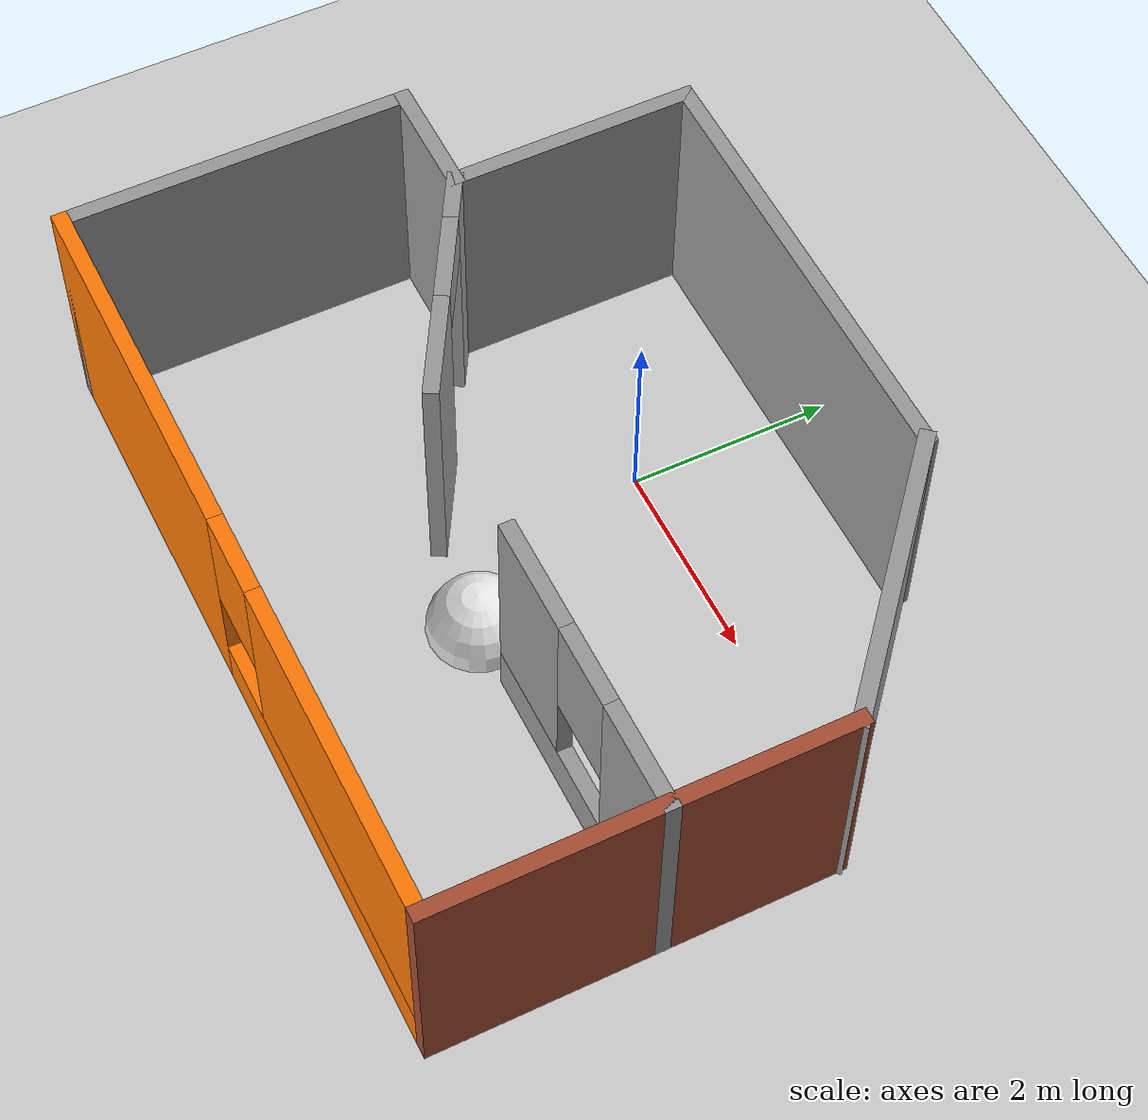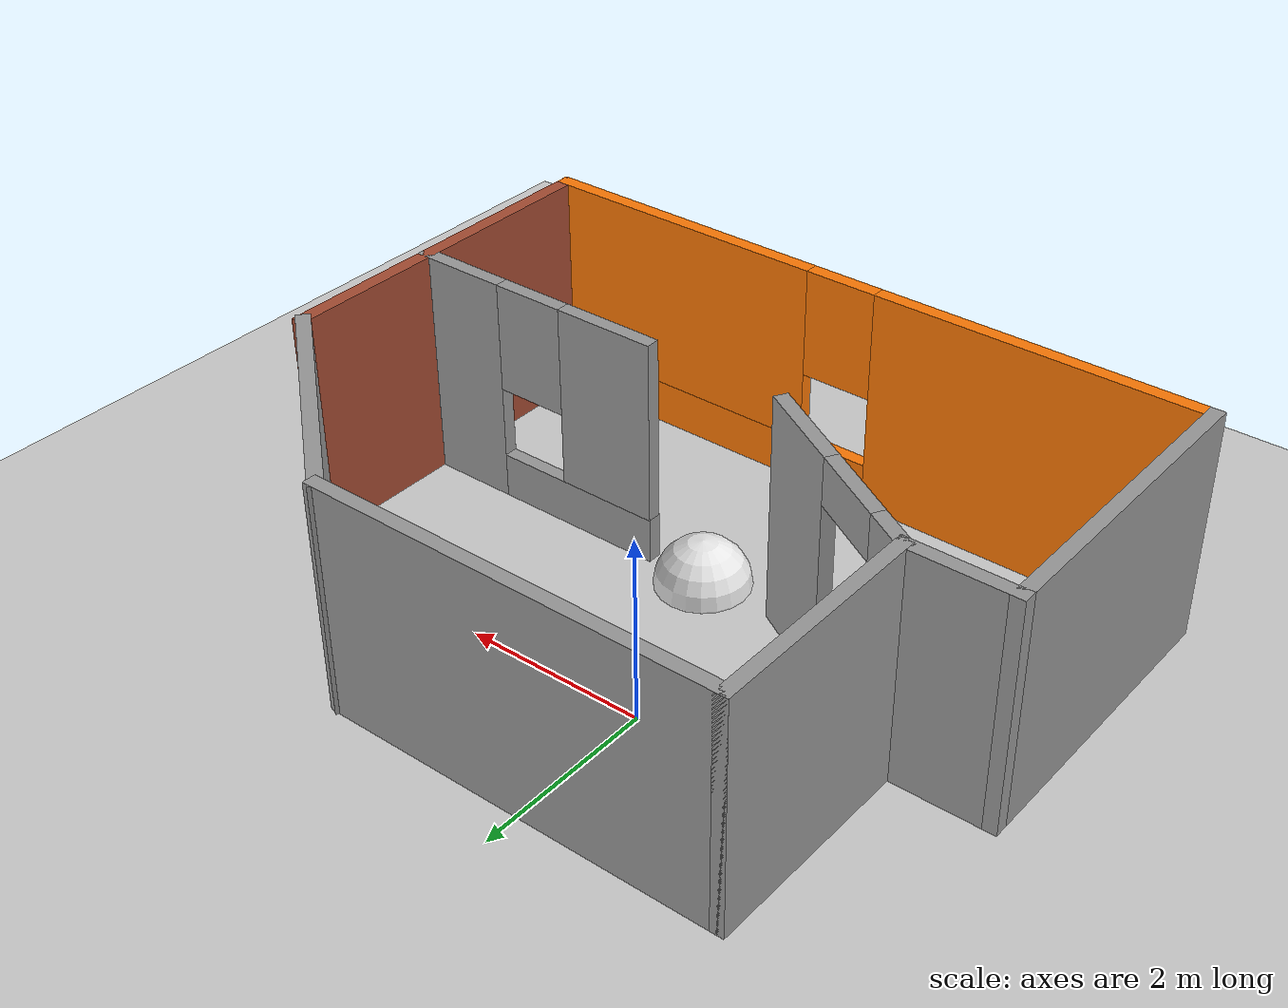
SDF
<?xml version="1.0" ?>

<sdf version="1.4">

  <world name="default">

    <include>
      <uri>model://ground_plane</uri>
    </include>

    <model name='my_ball'>
      <pose frame=''>0.8 -2 0 0 -0 0</pose>
      <link name='link_0'>
        <pose frame=''>0 0 0 0 -0 0</pose>
        <inertial>
          <mass>1</mass>
          <inertia>
            <ixx>0.1</ixx>
            <ixy>0</ixy>
            <ixz>0</ixz>
            <iyy>0.1</iyy>
            <iyz>0</iyz>
            <izz>0.1</izz>
          </inertia>
          <pose frame=''>0 0 0 0 -0 0</pose>
        </inertial>
        <gravity>1</gravity>
        <self_collide>0</self_collide>
        <kinematic>0</kinematic>
        <visual name='visual'>
          <pose frame=''>0 0 0 0 -0 0</pose>
          <geometry>
            <sphere>
              <radius>0.5</radius>
            </sphere>
          </geometry>
          <material>
            <lighting>1</lighting>
            <script>
              <uri>file://media/materials/scripts/gazebo.material</uri>
              <name>Gazebo/White</name>
            </script>
            <shader type='pixel'>
              <normal_map>__default__</normal_map>
            </shader>
            <ambient>1 1 1 1</ambient>
            <diffuse>1 1 1 1</diffuse>
            <specular>1 1 1 1</specular>
            <emissive>1 1 1 1</emissive>
          </material>
          <transparency>0</transparency>
          <cast_shadows>1</cast_shadows>
        </visual>
        <collision name='collision'>
          <laser_retro>0</laser_retro>
          <max_contacts>10</max_contacts>
          <pose frame=''>0 0 0 0 -0 0</pose>
          <geometry>
            <sphere>
              <radius>0.5</radius>
            </sphere>
          </geometry>
          <surface>
            <friction>
              <ode>
                <mu>1</mu>
                <mu2>1</mu2>
                <fdir1>0 0 0</fdir1>
                <slip1>0</slip1>
                <slip2>0</slip2>
              </ode>
              <torsional>
                <coefficient>1</coefficient>
                <patch_radius>0</patch_radius>
                <surface_radius>0</surface_radius>
                <use_patch_radius>1</use_patch_radius>
                <ode>
                  <slip>0</slip>
                </ode>
              </torsional>
            </friction>
            <bounce>
              <restitution_coefficient>0</restitution_coefficient>
              <threshold>1e+06</threshold>
            </bounce>
            <contact>
              <collide_without_contact>0</collide_without_contact>
              <collide_without_contact_bitmask>1</collide_without_contact_bitmask>
              <collide_bitmask>1</collide_bitmask>
              <ode>
                <soft_cfm>0</soft_cfm>
                <soft_erp>0.2</soft_erp>
                <kp>1e+13</kp>
                <kd>1</kd>
                <max_vel>0.01</max_vel>
                <min_depth>0</min_depth>
              </ode>
              <bullet>
                <split_impulse>1</split_impulse>
                <split_impulse_penetration_threshold>-0.01</split_impulse_penetration_threshold>
                <soft_cfm>0</soft_cfm>
                <soft_erp>0.2</soft_erp>
                <kp>1e+13</kp>
                <kd>1</kd>
              </bullet>
            </contact>
          </surface>
        </collision>
      </link>
      <static>0</static>
      <allow_auto_disable>1</allow_auto_disable>
      <pose frame=''>2.25165 -0.125081 0 0 -0 0</pose>
    </model>

    <model name='building'>
      <pose frame=''>0.565384 -1.28462 0 0 -0 0</pose>
      <link name='Wall_16'>
        <collision name='Wall_16_Collision'>
          <geometry>
            <box>
              <size>3.5 0.15 2.5</size>
            </box>
          </geometry>
          <pose frame=''>0 0 1.25 0 -0 0</pose>
          <max_contacts>10</max_contacts>
          <surface>
            <contact>
              <ode/>
            </contact>
            <bounce/>
            <friction>
              <torsional>
                <ode/>
              </torsional>
              <ode/>
            </friction>
          </surface>
        </collision>
        <visual name='Wall_16_Visual'>
          <pose frame=''>0 0 1.25 0 -0 0</pose>
          <geometry>
            <box>
              <size>3.5 0.15 2.5</size>
            </box>
          </geometry>
          <material>
            <script>
              <uri>file://media/materials/scripts/gazebo.material</uri>
              <name>Gazebo/Grey</name>
            </script>
            <ambient>1 1 1 1</ambient>
          </material>
          <meta>
            <layer>0</layer>
          </meta>
        </visual>
        <pose frame=''>-3.81538 -1.19038 0 0 0 -1.5708</pose>
        <self_collide>0</self_collide>
        <kinematic>0</kinematic>
      </link>
      <link name='Wall_17'>
        <pose frame=''>-0.015384 -2.86538 0 0 -0 0</pose>
        <visual name='Wall_17_Visual_0'>
          <pose frame=''>-2.0525 0 1.25 0 -0 0</pose>
          <geometry>
            <box>
              <size>3.645 0.15 2.5</size>
            </box>
          </geometry>
          <material>
            <script>
              <uri>file://media/materials/scripts/gazebo.material</uri>
              <name>Gazebo/Grey</name>
            </script>
            <ambient>0.996078 0.47451 0.0196078 1</ambient>
          </material>
          <meta>
            <layer>0</layer>
          </meta>
        </visual>
        <collision name='Wall_17_Collision_0'>
          <geometry>
            <box>
              <size>3.645 0.15 2.5</size>
            </box>
          </geometry>
          <pose frame=''>-2.0525 0 1.25 0 -0 0</pose>
          <max_contacts>10</max_contacts>
          <surface>
            <contact>
              <ode/>
            </contact>
            <bounce/>
            <friction>
              <torsional>
                <ode/>
              </torsional>
              <ode/>
            </friction>
          </surface>
        </collision>
        <visual name='Wall_17_Visual_1'>
          <pose frame=''>1.8225 0 0.25 0 -0 0</pose>
          <geometry>
            <box>
              <size>4.105 0.15 0.5</size>
            </box>
          </geometry>
          <material>
            <script>
              <uri>file://media/materials/scripts/gazebo.material</uri>
              <name>Gazebo/Grey</name>
            </script>
            <ambient>0.996078 0.47451 0.0196078 1</ambient>
          </material>
          <meta>
            <layer>0</layer>
          </meta>
        </visual>
        <collision name='Wall_17_Collision_1'>
          <geometry>
            <box>
              <size>4.105 0.15 0.5</size>
            </box>
          </geometry>
          <pose frame=''>1.8225 0 0.25 0 -0 0</pose>
          <max_contacts>10</max_contacts>
          <surface>
            <contact>
              <ode/>
            </contact>
            <bounce/>
            <friction>
              <torsional>
                <ode/>
              </torsional>
              <ode/>
            </friction>
          </surface>
        </collision>
        <visual name='Wall_17_Visual_2'>
          <pose frame=''>2.2225 0 1.5 0 -0 0</pose>
          <geometry>
            <box>
              <size>3.305 0.15 2</size>
            </box>
          </geometry>
          <material>
            <script>
              <uri>file://media/materials/scripts/gazebo.material</uri>
              <name>Gazebo/Grey</name>
            </script>
            <ambient>0.996078 0.47451 0.0196078 1</ambient>
          </material>
          <meta>
            <layer>0</layer>
          </meta>
        </visual>
        <collision name='Wall_17_Collision_2'>
          <geometry>
            <box>
              <size>3.305 0.15 2</size>
            </box>
          </geometry>
          <pose frame=''>2.2225 0 1.5 0 -0 0</pose>
          <max_contacts>10</max_contacts>
          <surface>
            <contact>
              <ode/>
            </contact>
            <bounce/>
            <friction>
              <torsional>
                <ode/>
              </torsional>
              <ode/>
            </friction>
          </surface>
        </collision>
        <visual name='Wall_17_Visual_3'>
          <pose frame=''>0.17 0 1.9 0 -0 0</pose>
          <geometry>
            <box>
              <size>0.8 0.15 1.2</size>
            </box>
          </geometry>
          <material>
            <script>
              <uri>file://media/materials/scripts/gazebo.material</uri>
              <name>Gazebo/Grey</name>
            </script>
            <ambient>0.996078 0.47451 0.0196078 1</ambient>
          </material>
          <meta>
            <layer>0</layer>
          </meta>
        </visual>
        <collision name='Wall_17_Collision_3'>
          <geometry>
            <box>
              <size>0.8 0.15 1.2</size>
            </box>
          </geometry>
          <pose frame=''>0.17 0 1.9 0 -0 0</pose>
          <max_contacts>10</max_contacts>
          <surface>
            <contact>
              <ode/>
            </contact>
            <bounce/>
            <friction>
              <torsional>
                <ode/>
              </torsional>
              <ode/>
            </friction>
          </surface>
        </collision>
        <self_collide>0</self_collide>
        <kinematic>0</kinematic>
      </link>
      <link name='Wall_18'>
        <collision name='Wall_18_Collision'>
          <geometry>
            <box>
              <size>4 0.15 2.5</size>
            </box>
          </geometry>
          <pose frame=''>0 0 1.25 0 -0 0</pose>
          <max_contacts>10</max_contacts>
          <surface>
            <contact>
              <ode/>
            </contact>
            <bounce/>
            <friction>
              <torsional>
                <ode/>
              </torsional>
              <ode/>
            </friction>
          </surface>
        </collision>
        <visual name='Wall_18_Visual'>
          <pose frame=''>0 0 1.25 0 -0 0</pose>
          <geometry>
            <box>
              <size>4 0.15 2.5</size>
            </box>
          </geometry>
          <material>
            <script>
              <uri>file://media/materials/scripts/gazebo.material</uri>
              <name>Gazebo/Bricks</name>
            </script>
            <ambient>1 0.764706 0.305882 1</ambient>
          </material>
          <meta>
            <layer>0</layer>
          </meta>
        </visual>
        <pose frame=''>3.78462 -0.940384 0 0 -0 1.5708</pose>
        <self_collide>0</self_collide>
        <kinematic>0</kinematic>
      </link>
      <link name='Wall_20'>
        <collision name='Wall_20_Collision'>
          <geometry>
            <box>
              <size>1.25 0.15 2.5</size>
            </box>
          </geometry>
          <pose frame=''>0 0 1.25 0 -0 0</pose>
          <max_contacts>10</max_contacts>
          <surface>
            <contact>
              <ode/>
            </contact>
            <bounce/>
            <friction>
              <torsional>
                <ode/>
              </torsional>
              <ode/>
            </friction>
          </surface>
        </collision>
        <visual name='Wall_20_Visual'>
          <pose frame=''>0 0 1.25 0 -0 0</pose>
          <geometry>
            <box>
              <size>1.25 0.15 2.5</size>
            </box>
          </geometry>
          <material>
            <script>
              <uri>file://media/materials/scripts/gazebo.material</uri>
              <name>Gazebo/Grey</name>
            </script>
            <ambient>1 1 1 1</ambient>
          </material>
          <meta>
            <layer>0</layer>
          </meta>
        </visual>
        <pose frame=''>-3.26538 0.484616 0 0 -0 0</pose>
        <self_collide>0</self_collide>
        <kinematic>0</kinematic>
      </link>
      <link name='Wall_21'>
        <collision name='Wall_21_Collision'>
          <geometry>
            <box>
              <size>2.5 0.15 2.5</size>
            </box>
          </geometry>
          <pose frame=''>0 0 1.25 0 -0 0</pose>
          <max_contacts>10</max_contacts>
          <surface>
            <contact>
              <ode/>
            </contact>
            <bounce/>
            <friction>
              <torsional>
                <ode/>
              </torsional>
              <ode/>
            </friction>
          </surface>
        </collision>
        <visual name='Wall_21_Visual'>
          <pose frame=''>0 0 1.25 0 -0 0</pose>
          <geometry>
            <box>
              <size>2.5 0.15 2.5</size>
            </box>
          </geometry>
          <material>
            <script>
              <uri>file://media/materials/scripts/gazebo.material</uri>
              <name>Gazebo/Grey</name>
            </script>
            <ambient>1 1 1 1</ambient>
          </material>
          <meta>
            <layer>0</layer>
          </meta>
        </visual>
        <pose frame=''>-2.71538 1.65962 0 0 -0 1.5708</pose>
        <self_collide>0</self_collide>
        <kinematic>0</kinematic>
      </link>
      <link name='Wall_22'>
        <collision name='Wall_22_Collision'>
          <geometry>
            <box>
              <size>4.5 0.15 2.5</size>
            </box>
          </geometry>
          <pose frame=''>0 0 1.25 0 -0 0</pose>
          <max_contacts>10</max_contacts>
          <surface>
            <contact>
              <ode/>
            </contact>
            <bounce/>
            <friction>
              <torsional>
                <ode/>
              </torsional>
              <ode/>
            </friction>
          </surface>
        </collision>
        <visual name='Wall_22_Visual'>
          <pose frame=''>0 0 1.25 0 -0 0</pose>
          <geometry>
            <box>
              <size>4.5 0.15 2.5</size>
            </box>
          </geometry>
          <material>
            <script>
              <uri>file://media/materials/scripts/gazebo.material</uri>
              <name>Gazebo/Grey</name>
            </script>
            <ambient>1 1 1 1</ambient>
          </material>
          <meta>
            <layer>0</layer>
          </meta>
        </visual>
        <pose frame=''>-0.540384 2.83462 0 0 -0 0</pose>
        <self_collide>0</self_collide>
        <kinematic>0</kinematic>
      </link>
      <link name='Wall_23'>
        <collision name='Wall_23_Collision'>
          <geometry>
            <box>
              <size>2.98637 0.15 2.5</size>
            </box>
          </geometry>
          <pose frame=''>0 0 1.25 0 -0 0</pose>
          <max_contacts>10</max_contacts>
          <surface>
            <contact>
              <ode/>
            </contact>
            <bounce/>
            <friction>
              <torsional>
                <ode/>
              </torsional>
              <ode/>
            </friction>
          </surface>
        </collision>
        <visual name='Wall_23_Visual'>
          <pose frame=''>0 0 1.25 0 -0 0</pose>
          <geometry>
            <box>
              <size>2.98637 0.15 2.5</size>
            </box>
          </geometry>
          <material>
            <script>
              <uri>file://media/materials/scripts/gazebo.material</uri>
              <name>Gazebo/Grey</name>
            </script>
            <ambient>1 1 1 1</ambient>
          </material>
          <meta>
            <layer>0</layer>
          </meta>
        </visual>
        <pose frame=''>2.70962 1.90962 0 0 0 -0.710538</pose>
        <self_collide>0</self_collide>
        <kinematic>0</kinematic>
      </link>
      <link name='Wall_25'>
        <pose frame=''>-1.69781 -0.102884 0 0 0 -0.523599</pose>
        <visual name='Wall_25_Visual_0'>
          <pose frame=''>-0.985731 0 1.25 0 -0 0</pose>
          <geometry>
            <box>
              <size>0.528538 0.15 2.5</size>
            </box>
          </geometry>
          <material>
            <script>
              <uri>file://media/materials/scripts/gazebo.material</uri>
              <name>Gazebo/Grey</name>
            </script>
            <ambient>1 1 1 1</ambient>
          </material>
          <meta>
            <layer>0</layer>
          </meta>
        </visual>
        <collision name='Wall_25_Collision_0'>
          <geometry>
            <box>
              <size>0.528538 0.15 2.5</size>
            </box>
          </geometry>
          <pose frame=''>-0.985731 0 1.25 0 -0 0</pose>
          <max_contacts>10</max_contacts>
          <surface>
            <contact>
              <ode/>
            </contact>
            <bounce/>
            <friction>
              <torsional>
                <ode/>
              </torsional>
              <ode/>
            </friction>
          </surface>
        </collision>
        <visual name='Wall_25_Visual_1'>
          <pose frame=''>0.714269 0 1.25 0 -0 0</pose>
          <geometry>
            <box>
              <size>1.07146 0.15 2.5</size>
            </box>
          </geometry>
          <material>
            <script>
              <uri>file://media/materials/scripts/gazebo.material</uri>
              <name>Gazebo/Grey</name>
            </script>
            <ambient>1 1 1 1</ambient>
          </material>
          <meta>
            <layer>0</layer>
          </meta>
        </visual>
        <collision name='Wall_25_Collision_1'>
          <geometry>
            <box>
              <size>1.07146 0.15 2.5</size>
            </box>
          </geometry>
          <pose frame=''>0.714269 0 1.25 0 -0 0</pose>
          <max_contacts>10</max_contacts>
          <surface>
            <contact>
              <ode/>
            </contact>
            <bounce/>
            <friction>
              <torsional>
                <ode/>
              </torsional>
              <ode/>
            </friction>
          </surface>
        </collision>
        <visual name='Wall_25_Visual_2'>
          <pose frame=''>-0.271462 0 2.25 0 -0 0</pose>
          <geometry>
            <box>
              <size>0.9 0.15 0.5</size>
            </box>
          </geometry>
          <material>
            <script>
              <uri>file://media/materials/scripts/gazebo.material</uri>
              <name>Gazebo/Grey</name>
            </script>
            <ambient>1 1 1 1</ambient>
          </material>
          <meta>
            <layer>0</layer>
          </meta>
        </visual>
        <collision name='Wall_25_Collision_2'>
          <geometry>
            <box>
              <size>0.9 0.15 0.5</size>
            </box>
          </geometry>
          <pose frame=''>-0.271462 0 2.25 0 -0 0</pose>
          <max_contacts>10</max_contacts>
          <surface>
            <contact>
              <ode/>
            </contact>
            <bounce/>
            <friction>
              <torsional>
                <ode/>
              </torsional>
              <ode/>
            </friction>
          </surface>
        </collision>
        <self_collide>0</self_collide>
        <kinematic>0</kinematic>
      </link>
      <link name='Wall_29'>
        <pose frame=''>2.35962 -0.725384 0 0 -0 3.14159</pose>
        <visual name='Wall_29_Visual_0'>
          <pose frame=''>-0.9625 0 1.25 0 -0 0</pose>
          <geometry>
            <box>
              <size>1.075 0.15 2.5</size>
            </box>
          </geometry>
          <material>
            <script>
              <uri>file://media/materials/scripts/gazebo.material</uri>
              <name>Gazebo/Grey</name>
            </script>
            <ambient>1 1 1 1</ambient>
          </material>
          <meta>
            <layer>0</layer>
          </meta>
        </visual>
        <collision name='Wall_29_Collision_0'>
          <geometry>
            <box>
              <size>1.075 0.15 2.5</size>
            </box>
          </geometry>
          <pose frame=''>-0.9625 0 1.25 0 -0 0</pose>
          <max_contacts>10</max_contacts>
          <surface>
            <contact>
              <ode/>
            </contact>
            <bounce/>
            <friction>
              <torsional>
                <ode/>
              </torsional>
              <ode/>
            </friction>
          </surface>
        </collision>
        <visual name='Wall_29_Visual_1'>
          <pose frame=''>0.5375 0 0.25 0 -0 0</pose>
          <geometry>
            <box>
              <size>1.925 0.15 0.5</size>
            </box>
          </geometry>
          <material>
            <script>
              <uri>file://media/materials/scripts/gazebo.material</uri>
              <name>Gazebo/Grey</name>
            </script>
            <ambient>1 1 1 1</ambient>
          </material>
          <meta>
            <layer>0</layer>
          </meta>
        </visual>
        <collision name='Wall_29_Collision_1'>
          <geometry>
            <box>
              <size>1.925 0.15 0.5</size>
            </box>
          </geometry>
          <pose frame=''>0.5375 0 0.25 0 -0 0</pose>
          <max_contacts>10</max_contacts>
          <surface>
            <contact>
              <ode/>
            </contact>
            <bounce/>
            <friction>
              <torsional>
                <ode/>
              </torsional>
              <ode/>
            </friction>
          </surface>
        </collision>
        <visual name='Wall_29_Visual_2'>
          <pose frame=''>0.9375 0 1.5 0 -0 0</pose>
          <geometry>
            <box>
              <size>1.125 0.15 2</size>
            </box>
          </geometry>
          <material>
            <script>
              <uri>file://media/materials/scripts/gazebo.material</uri>
              <name>Gazebo/Grey</name>
            </script>
            <ambient>1 1 1 1</ambient>
          </material>
          <meta>
            <layer>0</layer>
          </meta>
        </visual>
        <collision name='Wall_29_Collision_2'>
          <geometry>
            <box>
              <size>1.125 0.15 2</size>
            </box>
          </geometry>
          <pose frame=''>0.9375 0 1.5 0 -0 0</pose>
          <max_contacts>10</max_contacts>
          <surface>
            <contact>
              <ode/>
            </contact>
            <bounce/>
            <friction>
              <torsional>
                <ode/>
              </torsional>
              <ode/>
            </friction>
          </surface>
        </collision>
        <visual name='Wall_29_Visual_3'>
          <pose frame=''>-0.025 0 1.9 0 -0 0</pose>
          <geometry>
            <box>
              <size>0.8 0.15 1.2</size>
            </box>
          </geometry>
          <material>
            <script>
              <uri>file://media/materials/scripts/gazebo.material</uri>
              <name>Gazebo/Grey</name>
            </script>
            <ambient>1 1 1 1</ambient>
          </material>
          <meta>
            <layer>0</layer>
          </meta>
        </visual>
        <collision name='Wall_29_Collision_3'>
          <geometry>
            <box>
              <size>0.8 0.15 1.2</size>
            </box>
          </geometry>
          <pose frame=''>-0.025 0 1.9 0 -0 0</pose>
          <max_contacts>10</max_contacts>
          <surface>
            <contact>
              <ode/>
            </contact>
            <bounce/>
            <friction>
              <torsional>
                <ode/>
              </torsional>
              <ode/>
            </friction>
          </surface>
        </collision>
        <self_collide>0</self_collide>
        <kinematic>0</kinematic>
      </link>
      <static>1</static>
    </model>

    <!-- Light source -->
    <include>
      <uri>model://sun</uri>
    </include>

    <!-- World camera -->
    <gui fullscreen='0'>
      <camera name='world_camera'>
        <pose>4.927360 -4.376610 3.740080 0.000000 0.275643 2.356190</pose>
        <view_controller>orbit</view_controller>
      </camera>
    </gui>

  </world>
</sdf>
